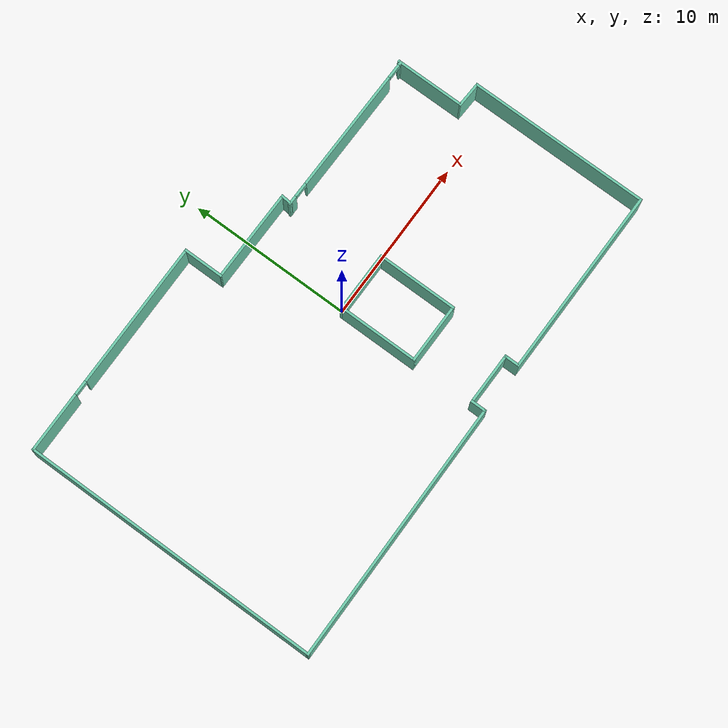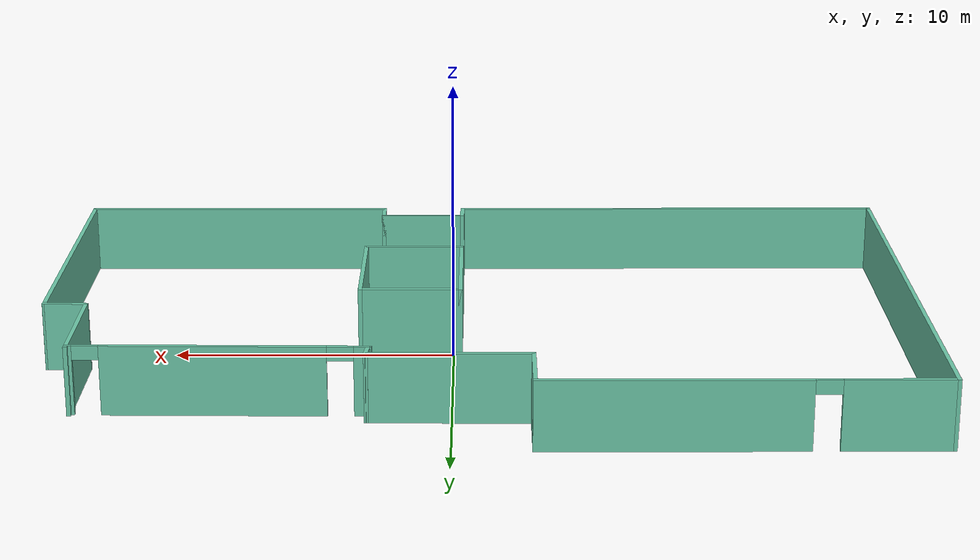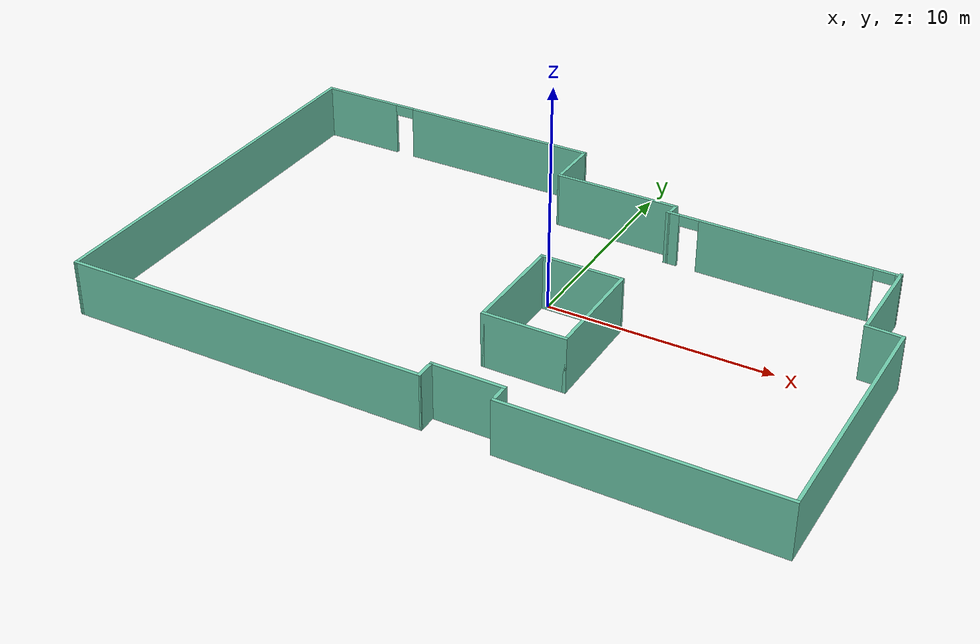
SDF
<sdf version="1.7">
 <world name="lab_arm_world">
  <model name="ground_plane">
   <static>1</static>
   <link name="link_ground_plane">
    <collision name="collision">
     <geometry><plane><normal>0 0 1</normal><size>10 10</size></plane></geometry>
    </collision>
   </link>
  </model>
  <model name="RAH-lab">
   <link name="Wall_0">
    <pose>-15.4096 -0.034118 0 0 0 -1.5708</pose>
    <visual name="Wall_0_Visual">
     <pose>0 0 1.25 0 -0 0</pose>
     <geometry><box><size>18.5837 0.15 2.5</size></box></geometry>
     <material>
      <diffuse>0.435294 0.796078 0.67451 1</diffuse>
      <specular>0.1 0.1 0.1 1</specular>
      <ambient>0.435294 0.796078 0.67451 1</ambient>
      <shader type="pixel"/>
     </material>
     <meta><layer>0</layer></meta>
    </visual>
    <collision name="Wall_0_Collision">
     <pose>0 0 1.25 0 -0 0</pose>
     <geometry><box><size>18.5837 0.15 2.5</size></box></geometry>
     <surface>
      <friction>
       <ode><mu>1</mu><mu2>1</mu2><fdir1>0 0 0</fdir1><slip1>0</slip1><slip2>0</slip2></ode>
       <torsional>
        <coefficient>1</coefficient>
        <patch_radius>0</patch_radius>
        <surface_radius>0</surface_radius>
        <use_patch_radius>1</use_patch_radius>
        <ode><slip>0</slip></ode>
       </torsional>
      </friction>
      <bounce><restitution_coefficient>0</restitution_coefficient><threshold>1e+06</threshold></bounce>
      <contact>
       <collide_without_contact>0</collide_without_contact>
       <collide_without_contact_bitmask>1</collide_without_contact_bitmask>
       <collide_bitmask>1</collide_bitmask>
       <ode>
        <soft_cfm>0</soft_cfm>
        <soft_erp>0.2</soft_erp>
        <kp>1e+13</kp>
        <kd>1</kd>
        <max_vel>0.01</max_vel>
        <min_depth>0</min_depth>
       </ode>
       <bullet>
        <split_impulse>1</split_impulse>
        <split_impulse_penetration_threshold>-0.01</split_impulse_penetration_threshold>
        <soft_cfm>0</soft_cfm>
        <soft_erp>0.2</soft_erp>
        <kp>1e+13</kp>
        <kd>1</kd>
       </bullet>
      </contact>
     </surface>
    </collision>
   </link>
   <link name="Wall_1">
    <pose>-7.31852 -9.1806 0 0 -0 0.008695</pose>
    <visual name="Wall_1_Visual">
     <pose>0 0 1.25 0 -0 0</pose>
     <geometry><box><size>16.3328 0.15 2.5</size></box></geometry>
     <material>
      <diffuse>0.435294 0.796078 0.67451 1</diffuse>
      <specular>0.1 0.1 0.1 1</specular>
      <ambient>0.435294 0.796078 0.67451 1</ambient>
      <shader type="pixel"/>
     </material>
     <meta><layer>0</layer></meta>
    </visual>
    <collision name="Wall_1_Collision">
     <pose>0 0 1.25 0 -0 0</pose>
     <geometry><box><size>16.3328 0.15 2.5</size></box></geometry>
     <surface>
      <friction>
       <ode><mu>1</mu><mu2>1</mu2><fdir1>0 0 0</fdir1><slip1>0</slip1><slip2>0</slip2></ode>
       <torsional>
        <coefficient>1</coefficient>
        <patch_radius>0</patch_radius>
        <surface_radius>0</surface_radius>
        <use_patch_radius>1</use_patch_radius>
        <ode><slip>0</slip></ode>
       </torsional>
      </friction>
      <bounce><restitution_coefficient>0</restitution_coefficient><threshold>1e+06</threshold></bounce>
      <contact>
       <collide_without_contact>0</collide_without_contact>
       <collide_without_contact_bitmask>1</collide_without_contact_bitmask>
       <collide_bitmask>1</collide_bitmask>
       <ode>
        <soft_cfm>0</soft_cfm>
        <soft_erp>0.2</soft_erp>
        <kp>1e+13</kp>
        <kd>1</kd>
        <max_vel>0.01</max_vel>
        <min_depth>0</min_depth>
       </ode>
       <bullet>
        <split_impulse>1</split_impulse>
        <split_impulse_penetration_threshold>-0.01</split_impulse_penetration_threshold>
        <soft_cfm>0</soft_cfm>
        <soft_erp>0.2</soft_erp>
        <kp>1e+13</kp>
        <kd>1</kd>
       </bullet>
      </contact>
     </surface>
    </collision>
   </link>
   <link name="Wall_10">
    <pose>3.82389 6.55251 0 0 -0 1.47981</pose>
    <visual name="Wall_10_Visual">
     <pose>0 0 1.25 0 -0 0</pose>
     <geometry><box><size>0.732199 0.15 2.5</size></box></geometry>
     <material>
      <diffuse>0.435294 0.796078 0.67451 1</diffuse>
      <specular>0.1 0.1 0.1 1</specular>
      <ambient>0.435294 0.796078 0.67451 1</ambient>
      <shader type="pixel"/>
     </material>
     <meta><layer>0</layer></meta>
    </visual>
    <collision name="Wall_10_Collision">
     <pose>0 0 1.25 0 -0 0</pose>
     <geometry><box><size>0.732199 0.15 2.5</size></box></geometry>
     <surface>
      <friction>
       <ode><mu>1</mu><mu2>1</mu2><fdir1>0 0 0</fdir1><slip1>0</slip1><slip2>0</slip2></ode>
       <torsional>
        <coefficient>1</coefficient>
        <patch_radius>0</patch_radius>
        <surface_radius>0</surface_radius>
        <use_patch_radius>1</use_patch_radius>
        <ode><slip>0</slip></ode>
       </torsional>
      </friction>
      <bounce><restitution_coefficient>0</restitution_coefficient><threshold>1e+06</threshold></bounce>
      <contact>
       <collide_without_contact>0</collide_without_contact>
       <collide_without_contact_bitmask>1</collide_without_contact_bitmask>
       <collide_bitmask>1</collide_bitmask>
       <ode>
        <soft_cfm>0</soft_cfm>
        <soft_erp>0.2</soft_erp>
        <kp>1e+13</kp>
        <kd>1</kd>
        <max_vel>0.01</max_vel>
        <min_depth>0</min_depth>
       </ode>
       <bullet>
        <split_impulse>1</split_impulse>
        <split_impulse_penetration_threshold>-0.01</split_impulse_penetration_threshold>
        <soft_cfm>0</soft_cfm>
        <soft_erp>0.2</soft_erp>
        <kp>1e+13</kp>
        <kd>1</kd>
       </bullet>
      </contact>
     </surface>
    </collision>
   </link>
   <link name="Wall_11">
    <pose>1.02612 6.85661 0 0 -0 3.13647</pose>
    <visual name="Wall_11_Visual">
     <pose>0 0 1.25 0 -0 0</pose>
     <geometry><box><size>5.69272 0.15 2.5</size></box></geometry>
     <material>
      <diffuse>0.435294 0.796078 0.67451 1</diffuse>
      <specular>0.1 0.1 0.1 1</specular>
      <ambient>0.435294 0.796078 0.67451 1</ambient>
      <shader type="pixel"/>
     </material>
     <meta><layer>0</layer></meta>
    </visual>
    <collision name="Wall_11_Collision">
     <pose>0 0 1.25 0 -0 0</pose>
     <geometry><box><size>5.69272 0.15 2.5</size></box></geometry>
     <surface>
      <friction>
       <ode><mu>1</mu><mu2>1</mu2><fdir1>0 0 0</fdir1><slip1>0</slip1><slip2>0</slip2></ode>
       <torsional>
        <coefficient>1</coefficient>
        <patch_radius>0</patch_radius>
        <surface_radius>0</surface_radius>
        <use_patch_radius>1</use_patch_radius>
        <ode><slip>0</slip></ode>
       </torsional>
      </friction>
      <bounce><restitution_coefficient>0</restitution_coefficient><threshold>1e+06</threshold></bounce>
      <contact>
       <collide_without_contact>0</collide_without_contact>
       <collide_without_contact_bitmask>1</collide_without_contact_bitmask>
       <collide_bitmask>1</collide_bitmask>
       <ode>
        <soft_cfm>0</soft_cfm>
        <soft_erp>0.2</soft_erp>
        <kp>1e+13</kp>
        <kd>1</kd>
        <max_vel>0.01</max_vel>
        <min_depth>0</min_depth>
       </ode>
       <bullet>
        <split_impulse>1</split_impulse>
        <split_impulse_penetration_threshold>-0.01</split_impulse_penetration_threshold>
        <soft_cfm>0</soft_cfm>
        <soft_erp>0.2</soft_erp>
        <kp>1e+13</kp>
        <kd>1</kd>
       </bullet>
      </contact>
     </surface>
    </collision>
   </link>
   <link name="Wall_12">
    <pose>-1.7452 8.04581 0 0 -0 1.5708</pose>
    <visual name="Wall_12_Visual">
     <pose>0 0 1.25 0 -0 0</pose>
     <geometry><box><size>2.5 0.15 2.5</size></box></geometry>
     <material>
      <diffuse>0.435294 0.796078 0.67451 1</diffuse>
      <specular>0.1 0.1 0.1 1</specular>
      <ambient>0.435294 0.796078 0.67451 1</ambient>
      <shader type="pixel"/>
     </material>
     <meta><layer>0</layer></meta>
    </visual>
    <collision name="Wall_12_Collision">
     <pose>0 0 1.25 0 -0 0</pose>
     <geometry><box><size>2.5 0.15 2.5</size></box></geometry>
     <surface>
      <friction>
       <ode><mu>1</mu><mu2>1</mu2><fdir1>0 0 0</fdir1><slip1>0</slip1><slip2>0</slip2></ode>
       <torsional>
        <coefficient>1</coefficient>
        <patch_radius>0</patch_radius>
        <surface_radius>0</surface_radius>
        <use_patch_radius>1</use_patch_radius>
        <ode><slip>0</slip></ode>
       </torsional>
      </friction>
      <bounce><restitution_coefficient>0</restitution_coefficient><threshold>1e+06</threshold></bounce>
      <contact>
       <collide_without_contact>0</collide_without_contact>
       <collide_without_contact_bitmask>1</collide_without_contact_bitmask>
       <collide_bitmask>1</collide_bitmask>
       <ode>
        <soft_cfm>0</soft_cfm>
        <soft_erp>0.2</soft_erp>
        <kp>1e+13</kp>
        <kd>1</kd>
        <max_vel>0.01</max_vel>
        <min_depth>0</min_depth>
       </ode>
       <bullet>
        <split_impulse>1</split_impulse>
        <split_impulse_penetration_threshold>-0.01</split_impulse_penetration_threshold>
        <soft_cfm>0</soft_cfm>
        <soft_erp>0.2</soft_erp>
        <kp>1e+13</kp>
        <kd>1</kd>
       </bullet>
      </contact>
     </surface>
    </collision>
   </link>
   <link name="Wall_13">
    <pose>-8.547 9.21697 0 0 0 -3.13656</pose>
    <visual name="Wall_13_Visual_1">
     <pose>5.00383 0 1.25 0 -0 0</pose>
     <geometry><box><size>3.74618 0.15 2.5</size></box></geometry>
     <material>
      <diffuse>0.435294 0.796078 0.67451 1</diffuse>
      <specular>0.1 0.1 0.1 1</specular>
      <ambient>0.435294 0.796078 0.67451 1</ambient>
      <shader type="pixel"/>
     </material>
     <meta><layer>0</layer></meta>
    </visual>
    <visual name="Wall_13_Visual_2">
     <pose>2.68074 0 2.25 0 -0 0</pose>
     <geometry><box><size>0.9 0.15 0.5</size></box></geometry>
     <material>
      <diffuse>0.435294 0.796078 0.67451 1</diffuse>
      <specular>0.1 0.1 0.1 1</specular>
      <ambient>0.435294 0.796078 0.67451 1</ambient>
      <shader type="pixel"/>
     </material>
     <meta><layer>0</layer></meta>
    </visual>
    <visual name="Wall_13_Visual_0">
     <pose>-2.32309 0 1.25 0 -0 0</pose>
     <geometry><box><size>9.10767 0.15 2.5</size></box></geometry>
     <material>
      <diffuse>0.435294 0.796078 0.67451 1</diffuse>
      <specular>0.1 0.1 0.1 1</specular>
      <ambient>0.435294 0.796078 0.67451 1</ambient>
      <shader type="pixel"/>
     </material>
     <meta><layer>0</layer></meta>
    </visual>
    <collision name="Wall_13_Collision_0">
     <pose>-2.32309 0 1.25 0 -0 0</pose>
     <geometry><box><size>9.10767 0.15 2.5</size></box></geometry>
     <surface>
      <friction>
       <ode><mu>1</mu><mu2>1</mu2><fdir1>0 0 0</fdir1><slip1>0</slip1><slip2>0</slip2></ode>
       <torsional>
        <coefficient>1</coefficient>
        <patch_radius>0</patch_radius>
        <surface_radius>0</surface_radius>
        <use_patch_radius>1</use_patch_radius>
        <ode><slip>0</slip></ode>
       </torsional>
      </friction>
      <bounce><restitution_coefficient>0</restitution_coefficient><threshold>1e+06</threshold></bounce>
      <contact>
       <collide_without_contact>0</collide_without_contact>
       <collide_without_contact_bitmask>1</collide_without_contact_bitmask>
       <collide_bitmask>1</collide_bitmask>
       <ode>
        <soft_cfm>0</soft_cfm>
        <soft_erp>0.2</soft_erp>
        <kp>1e+13</kp>
        <kd>1</kd>
        <max_vel>0.01</max_vel>
        <min_depth>0</min_depth>
       </ode>
       <bullet>
        <split_impulse>1</split_impulse>
        <split_impulse_penetration_threshold>-0.01</split_impulse_penetration_threshold>
        <soft_cfm>0</soft_cfm>
        <soft_erp>0.2</soft_erp>
        <kp>1e+13</kp>
        <kd>1</kd>
       </bullet>
      </contact>
     </surface>
    </collision>
    <collision name="Wall_13_Collision_2">
     <pose>2.68074 0 2.25 0 -0 0</pose>
     <geometry><box><size>0.9 0.15 0.5</size></box></geometry>
     <surface>
      <friction>
       <ode><mu>1</mu><mu2>1</mu2><fdir1>0 0 0</fdir1><slip1>0</slip1><slip2>0</slip2></ode>
       <torsional>
        <coefficient>1</coefficient>
        <patch_radius>0</patch_radius>
        <surface_radius>0</surface_radius>
        <use_patch_radius>1</use_patch_radius>
        <ode><slip>0</slip></ode>
       </torsional>
      </friction>
      <bounce><restitution_coefficient>0</restitution_coefficient><threshold>1e+06</threshold></bounce>
      <contact>
       <collide_without_contact>0</collide_without_contact>
       <collide_without_contact_bitmask>1</collide_without_contact_bitmask>
       <collide_bitmask>1</collide_bitmask>
       <ode>
        <soft_cfm>0</soft_cfm>
        <soft_erp>0.2</soft_erp>
        <kp>1e+13</kp>
        <kd>1</kd>
        <max_vel>0.01</max_vel>
        <min_depth>0</min_depth>
       </ode>
       <bullet>
        <split_impulse>1</split_impulse>
        <split_impulse_penetration_threshold>-0.01</split_impulse_penetration_threshold>
        <soft_cfm>0</soft_cfm>
        <soft_erp>0.2</soft_erp>
        <kp>1e+13</kp>
        <kd>1</kd>
       </bullet>
      </contact>
     </surface>
    </collision>
    <collision name="Wall_13_Collision_1">
     <pose>5.00383 0 1.25 0 -0 0</pose>
     <geometry><box><size>3.74618 0.15 2.5</size></box></geometry>
     <surface>
      <friction>
       <ode><mu>1</mu><mu2>1</mu2><fdir1>0 0 0</fdir1><slip1>0</slip1><slip2>0</slip2></ode>
       <torsional>
        <coefficient>1</coefficient>
        <patch_radius>0</patch_radius>
        <surface_radius>0</surface_radius>
        <use_patch_radius>1</use_patch_radius>
        <ode><slip>0</slip></ode>
       </torsional>
      </friction>
      <bounce><restitution_coefficient>0</restitution_coefficient><threshold>1e+06</threshold></bounce>
      <contact>
       <collide_without_contact>0</collide_without_contact>
       <collide_without_contact_bitmask>1</collide_without_contact_bitmask>
       <collide_bitmask>1</collide_bitmask>
       <ode>
        <soft_cfm>0</soft_cfm>
        <soft_erp>0.2</soft_erp>
        <kp>1e+13</kp>
        <kd>1</kd>
        <max_vel>0.01</max_vel>
        <min_depth>0</min_depth>
       </ode>
       <bullet>
        <split_impulse>1</split_impulse>
        <split_impulse_penetration_threshold>-0.01</split_impulse_penetration_threshold>
        <soft_cfm>0</soft_cfm>
        <soft_erp>0.2</soft_erp>
        <kp>1e+13</kp>
        <kd>1</kd>
       </bullet>
      </contact>
     </surface>
    </collision>
   </link>
   <link name="Wall_15">
    <pose>0.761931 -1.9537 0 0 0 -1.5708</pose>
    <visual name="Wall_15_Visual">
     <pose>0 0 1.25 0 -0 0</pose>
     <geometry><box><size>5 0.15 2.5</size></box></geometry>
     <material>
      <diffuse>0.435294 0.796078 0.67451 1</diffuse>
      <specular>0.1 0.1 0.1 1</specular>
      <ambient>0.435294 0.796078 0.67451 1</ambient>
      <shader type="pixel"/>
     </material>
     <meta><layer>0</layer></meta>
    </visual>
    <collision name="Wall_15_Collision">
     <pose>0 0 1.25 0 -0 0</pose>
     <geometry><box><size>5 0.15 2.5</size></box></geometry>
     <surface>
      <friction>
       <ode><mu>1</mu><mu2>1</mu2><fdir1>0 0 0</fdir1><slip1>0</slip1><slip2>0</slip2></ode>
       <torsional>
        <coefficient>1</coefficient>
        <patch_radius>0</patch_radius>
        <surface_radius>0</surface_radius>
        <use_patch_radius>1</use_patch_radius>
        <ode><slip>0</slip></ode>
       </torsional>
      </friction>
      <bounce><restitution_coefficient>0</restitution_coefficient><threshold>1e+06</threshold></bounce>
      <contact>
       <collide_without_contact>0</collide_without_contact>
       <collide_without_contact_bitmask>1</collide_without_contact_bitmask>
       <collide_bitmask>1</collide_bitmask>
       <ode>
        <soft_cfm>0</soft_cfm>
        <soft_erp>0.2</soft_erp>
        <kp>1e+13</kp>
        <kd>1</kd>
        <max_vel>0.01</max_vel>
        <min_depth>0</min_depth>
       </ode>
       <bullet>
        <split_impulse>1</split_impulse>
        <split_impulse_penetration_threshold>-0.01</split_impulse_penetration_threshold>
        <soft_cfm>0</soft_cfm>
        <soft_erp>0.2</soft_erp>
        <kp>1e+13</kp>
        <kd>1</kd>
       </bullet>
      </contact>
     </surface>
    </collision>
   </link>
   <link name="Wall_16">
    <pose>2.56193 -4.3787 0 0 -0 0</pose>
    <visual name="Wall_16_Visual">
     <pose>0 0 1.25 0 -0 0</pose>
     <geometry><box><size>3.75 0.15 2.5</size></box></geometry>
     <material>
      <diffuse>0.435294 0.796078 0.67451 1</diffuse>
      <specular>0.1 0.1 0.1 1</specular>
      <ambient>0.435294 0.796078 0.67451 1</ambient>
      <shader type="pixel"/>
     </material>
     <meta><layer>0</layer></meta>
    </visual>
    <collision name="Wall_16_Collision">
     <pose>0 0 1.25 0 -0 0</pose>
     <geometry><box><size>3.75 0.15 2.5</size></box></geometry>
     <surface>
      <friction>
       <ode><mu>1</mu><mu2>1</mu2><fdir1>0 0 0</fdir1><slip1>0</slip1><slip2>0</slip2></ode>
       <torsional>
        <coefficient>1</coefficient>
        <patch_radius>0</patch_radius>
        <surface_radius>0</surface_radius>
        <use_patch_radius>1</use_patch_radius>
        <ode><slip>0</slip></ode>
       </torsional>
      </friction>
      <bounce><restitution_coefficient>0</restitution_coefficient><threshold>1e+06</threshold></bounce>
      <contact>
       <collide_without_contact>0</collide_without_contact>
       <collide_without_contact_bitmask>1</collide_without_contact_bitmask>
       <collide_bitmask>1</collide_bitmask>
       <ode>
        <soft_cfm>0</soft_cfm>
        <soft_erp>0.2</soft_erp>
        <kp>1e+13</kp>
        <kd>1</kd>
        <max_vel>0.01</max_vel>
        <min_depth>0</min_depth>
       </ode>
       <bullet>
        <split_impulse>1</split_impulse>
        <split_impulse_penetration_threshold>-0.01</split_impulse_penetration_threshold>
        <soft_cfm>0</soft_cfm>
        <soft_erp>0.2</soft_erp>
        <kp>1e+13</kp>
        <kd>1</kd>
       </bullet>
      </contact>
     </surface>
    </collision>
   </link>
   <link name="Wall_17">
    <pose>4.36193 -1.9537 0 0 -0 1.5708</pose>
    <visual name="Wall_17_Visual">
     <pose>0 0 1.25 0 -0 0</pose>
     <geometry><box><size>5 0.15 2.5</size></box></geometry>
     <material>
      <diffuse>0.435294 0.796078 0.67451 1</diffuse>
      <specular>0.1 0.1 0.1 1</specular>
      <ambient>0.435294 0.796078 0.67451 1</ambient>
      <shader type="pixel"/>
     </material>
     <meta><layer>0</layer></meta>
    </visual>
    <collision name="Wall_17_Collision">
     <pose>0 0 1.25 0 -0 0</pose>
     <geometry><box><size>5 0.15 2.5</size></box></geometry>
     <surface>
      <friction>
       <ode><mu>1</mu><mu2>1</mu2><fdir1>0 0 0</fdir1><slip1>0</slip1><slip2>0</slip2></ode>
       <torsional>
        <coefficient>1</coefficient>
        <patch_radius>0</patch_radius>
        <surface_radius>0</surface_radius>
        <use_patch_radius>1</use_patch_radius>
        <ode><slip>0</slip></ode>
       </torsional>
      </friction>
      <bounce><restitution_coefficient>0</restitution_coefficient><threshold>1e+06</threshold></bounce>
      <contact>
       <collide_without_contact>0</collide_without_contact>
       <collide_without_contact_bitmask>1</collide_without_contact_bitmask>
       <collide_bitmask>1</collide_bitmask>
       <ode>
        <soft_cfm>0</soft_cfm>
        <soft_erp>0.2</soft_erp>
        <kp>1e+13</kp>
        <kd>1</kd>
        <max_vel>0.01</max_vel>
        <min_depth>0</min_depth>
       </ode>
       <bullet>
        <split_impulse>1</split_impulse>
        <split_impulse_penetration_threshold>-0.01</split_impulse_penetration_threshold>
        <soft_cfm>0</soft_cfm>
        <soft_erp>0.2</soft_erp>
        <kp>1e+13</kp>
        <kd>1</kd>
       </bullet>
      </contact>
     </surface>
    </collision>
   </link>
   <link name="Wall_18">
    <pose>2.56193 0.471296 0 0 -0 3.14159</pose>
    <visual name="Wall_18_Visual">
     <pose>0 0 1.25 0 -0 0</pose>
     <geometry><box><size>3.75 0.15 2.5</size></box></geometry>
     <material>
      <diffuse>0.435294 0.796078 0.67451 1</diffuse>
      <specular>0.1 0.1 0.1 1</specular>
      <ambient>0.435294 0.796078 0.67451 1</ambient>
      <shader type="pixel"/>
     </material>
     <meta><layer>0</layer></meta>
    </visual>
    <collision name="Wall_18_Collision">
     <pose>0 0 1.25 0 -0 0</pose>
     <geometry><box><size>3.75 0.15 2.5</size></box></geometry>
     <surface>
      <friction>
       <ode><mu>1</mu><mu2>1</mu2><fdir1>0 0 0</fdir1><slip1>0</slip1><slip2>0</slip2></ode>
       <torsional>
        <coefficient>1</coefficient>
        <patch_radius>0</patch_radius>
        <surface_radius>0</surface_radius>
        <use_patch_radius>1</use_patch_radius>
        <ode><slip>0</slip></ode>
       </torsional>
      </friction>
      <bounce><restitution_coefficient>0</restitution_coefficient><threshold>1e+06</threshold></bounce>
      <contact>
       <collide_without_contact>0</collide_without_contact>
       <collide_without_contact_bitmask>1</collide_without_contact_bitmask>
       <collide_bitmask>1</collide_bitmask>
       <ode>
        <soft_cfm>0</soft_cfm>
        <soft_erp>0.2</soft_erp>
        <kp>1e+13</kp>
        <kd>1</kd>
        <max_vel>0.01</max_vel>
        <min_depth>0</min_depth>
       </ode>
       <bullet>
        <split_impulse>1</split_impulse>
        <split_impulse_penetration_threshold>-0.01</split_impulse_penetration_threshold>
        <soft_cfm>0</soft_cfm>
        <soft_erp>0.2</soft_erp>
        <kp>1e+13</kp>
        <kd>1</kd>
       </bullet>
      </contact>
     </surface>
    </collision>
   </link>
   <link name="Wall_2">
    <pose>0.772595 -8.68809 0 0 -0 1.5708</pose>
    <visual name="Wall_2_Visual">
     <pose>0 0 1.25 0 -0 0</pose>
     <geometry><box><size>0.99429 0.15 2.5</size></box></geometry>
     <material>
      <diffuse>0.435294 0.796078 0.67451 1</diffuse>
      <specular>0.1 0.1 0.1 1</specular>
      <ambient>0.435294 0.796078 0.67451 1</ambient>
      <shader type="pixel"/>
     </material>
     <meta><layer>0</layer></meta>
    </visual>
    <collision name="Wall_2_Collision">
     <pose>0 0 1.25 0 -0 0</pose>
     <geometry><box><size>0.99429 0.15 2.5</size></box></geometry>
     <surface>
      <friction>
       <ode><mu>1</mu><mu2>1</mu2><fdir1>0 0 0</fdir1><slip1>0</slip1><slip2>0</slip2></ode>
       <torsional>
        <coefficient>1</coefficient>
        <patch_radius>0</patch_radius>
        <surface_radius>0</surface_radius>
        <use_patch_radius>1</use_patch_radius>
        <ode><slip>0</slip></ode>
       </torsional>
      </friction>
      <bounce><restitution_coefficient>0</restitution_coefficient><threshold>1e+06</threshold></bounce>
      <contact>
       <collide_without_contact>0</collide_without_contact>
       <collide_without_contact_bitmask>1</collide_without_contact_bitmask>
       <collide_bitmask>1</collide_bitmask>
       <ode>
        <soft_cfm>0</soft_cfm>
        <soft_erp>0.2</soft_erp>
        <kp>1e+13</kp>
        <kd>1</kd>
        <max_vel>0.01</max_vel>
        <min_depth>0</min_depth>
       </ode>
       <bullet>
        <split_impulse>1</split_impulse>
        <split_impulse_penetration_threshold>-0.01</split_impulse_penetration_threshold>
        <soft_cfm>0</soft_cfm>
        <soft_erp>0.2</soft_erp>
        <kp>1e+13</kp>
        <kd>1</kd>
       </bullet>
      </contact>
     </surface>
    </collision>
   </link>
   <link name="Wall_3">
    <pose>2.32046 -8.26595 0 0 -0 0</pose>
    <visual name="Wall_3_Visual">
     <pose>0 0 1.25 0 -0 0</pose>
     <geometry><box><size>3.24573 0.15 2.5</size></box></geometry>
     <material>
      <diffuse>0.435294 0.796078 0.67451 1</diffuse>
      <specular>0.1 0.1 0.1 1</specular>
      <ambient>0.435294 0.796078 0.67451 1</ambient>
      <shader type="pixel"/>
     </material>
     <meta><layer>0</layer></meta>
    </visual>
    <collision name="Wall_3_Collision">
     <pose>0 0 1.25 0 -0 0</pose>
     <geometry><box><size>3.24573 0.15 2.5</size></box></geometry>
     <surface>
      <friction>
       <ode><mu>1</mu><mu2>1</mu2><fdir1>0 0 0</fdir1><slip1>0</slip1><slip2>0</slip2></ode>
       <torsional>
        <coefficient>1</coefficient>
        <patch_radius>0</patch_radius>
        <surface_radius>0</surface_radius>
        <use_patch_radius>1</use_patch_radius>
        <ode><slip>0</slip></ode>
       </torsional>
      </friction>
      <bounce><restitution_coefficient>0</restitution_coefficient><threshold>1e+06</threshold></bounce>
      <contact>
       <collide_without_contact>0</collide_without_contact>
       <collide_without_contact_bitmask>1</collide_without_contact_bitmask>
       <collide_bitmask>1</collide_bitmask>
       <ode>
        <soft_cfm>0</soft_cfm>
        <soft_erp>0.2</soft_erp>
        <kp>1e+13</kp>
        <kd>1</kd>
        <max_vel>0.01</max_vel>
        <min_depth>0</min_depth>
       </ode>
       <bullet>
        <split_impulse>1</split_impulse>
        <split_impulse_penetration_threshold>-0.01</split_impulse_penetration_threshold>
        <soft_cfm>0</soft_cfm>
        <soft_erp>0.2</soft_erp>
        <kp>1e+13</kp>
        <kd>1</kd>
       </bullet>
      </contact>
     </surface>
    </collision>
   </link>
   <link name="Wall_4">
    <pose>3.86833 -8.68809 0 0 0 -1.5708</pose>
    <visual name="Wall_4_Visual">
     <pose>0 0 1.25 0 -0 0</pose>
     <geometry><box><size>0.99429 0.15 2.5</size></box></geometry>
     <material>
      <diffuse>0.435294 0.796078 0.67451 1</diffuse>
      <specular>0.1 0.1 0.1 1</specular>
      <ambient>0.435294 0.796078 0.67451 1</ambient>
      <shader type="pixel"/>
     </material>
     <meta><layer>0</layer></meta>
    </visual>
    <collision name="Wall_4_Collision">
     <pose>0 0 1.25 0 -0 0</pose>
     <geometry><box><size>0.99429 0.15 2.5</size></box></geometry>
     <surface>
      <friction>
       <ode><mu>1</mu><mu2>1</mu2><fdir1>0 0 0</fdir1><slip1>0</slip1><slip2>0</slip2></ode>
       <torsional>
        <coefficient>1</coefficient>
        <patch_radius>0</patch_radius>
        <surface_radius>0</surface_radius>
        <use_patch_radius>1</use_patch_radius>
        <ode><slip>0</slip></ode>
       </torsional>
      </friction>
      <bounce><restitution_coefficient>0</restitution_coefficient><threshold>1e+06</threshold></bounce>
      <contact>
       <collide_without_contact>0</collide_without_contact>
       <collide_without_contact_bitmask>1</collide_without_contact_bitmask>
       <collide_bitmask>1</collide_bitmask>
       <ode>
        <soft_cfm>0</soft_cfm>
        <soft_erp>0.2</soft_erp>
        <kp>1e+13</kp>
        <kd>1</kd>
        <max_vel>0.01</max_vel>
        <min_depth>0</min_depth>
       </ode>
       <bullet>
        <split_impulse>1</split_impulse>
        <split_impulse_penetration_threshold>-0.01</split_impulse_penetration_threshold>
        <soft_cfm>0</soft_cfm>
        <soft_erp>0.2</soft_erp>
        <kp>1e+13</kp>
        <kd>1</kd>
       </bullet>
      </contact>
     </surface>
    </collision>
   </link>
   <link name="Wall_5">
    <pose>9.63764 -9.11024 0 0 -0 0</pose>
    <visual name="Wall_5_Visual">
     <pose>0 0 1.25 0 -0 0</pose>
     <geometry><box><size>11.6886 0.15 2.5</size></box></geometry>
     <material>
      <diffuse>0.435294 0.796078 0.67451 1</diffuse>
      <specular>0.1 0.1 0.1 1</specular>
      <ambient>0.435294 0.796078 0.67451 1</ambient>
      <shader type="pixel"/>
     </material>
     <meta><layer>0</layer></meta>
    </visual>
    <collision name="Wall_5_Collision">
     <pose>0 0 1.25 0 -0 0</pose>
     <geometry><box><size>11.6886 0.15 2.5</size></box></geometry>
     <surface>
      <friction>
       <ode><mu>1</mu><mu2>1</mu2><fdir1>0 0 0</fdir1><slip1>0</slip1><slip2>0</slip2></ode>
       <torsional>
        <coefficient>1</coefficient>
        <patch_radius>0</patch_radius>
        <surface_radius>0</surface_radius>
        <use_patch_radius>1</use_patch_radius>
        <ode><slip>0</slip></ode>
       </torsional>
      </friction>
      <bounce><restitution_coefficient>0</restitution_coefficient><threshold>1e+06</threshold></bounce>
      <contact>
       <collide_without_contact>0</collide_without_contact>
       <collide_without_contact_bitmask>1</collide_without_contact_bitmask>
       <collide_bitmask>1</collide_bitmask>
       <ode>
        <soft_cfm>0</soft_cfm>
        <soft_erp>0.2</soft_erp>
        <kp>1e+13</kp>
        <kd>1</kd>
        <max_vel>0.01</max_vel>
        <min_depth>0</min_depth>
       </ode>
       <bullet>
        <split_impulse>1</split_impulse>
        <split_impulse_penetration_threshold>-0.01</split_impulse_penetration_threshold>
        <soft_cfm>0</soft_cfm>
        <soft_erp>0.2</soft_erp>
        <kp>1e+13</kp>
        <kd>1</kd>
       </bullet>
      </contact>
     </surface>
    </collision>
   </link>
   <link name="Wall_6">
    <pose>15.407 -3.56024 0 0 -0 1.5708</pose>
    <visual name="Wall_6_Visual">
     <pose>0 0 1.25 0 -0 0</pose>
     <geometry><box><size>11.25 0.15 2.5</size></box></geometry>
     <material>
      <diffuse>0.435294 0.796078 0.67451 1</diffuse>
      <specular>0.1 0.1 0.1 1</specular>
      <ambient>0.435294 0.796078 0.67451 1</ambient>
      <shader type="pixel"/>
     </material>
     <meta><layer>0</layer></meta>
    </visual>
    <collision name="Wall_6_Collision">
     <pose>0 0 1.25 0 -0 0</pose>
     <geometry><box><size>11.25 0.15 2.5</size></box></geometry>
     <surface>
      <friction>
       <ode><mu>1</mu><mu2>1</mu2><fdir1>0 0 0</fdir1><slip1>0</slip1><slip2>0</slip2></ode>
       <torsional>
        <coefficient>1</coefficient>
        <patch_radius>0</patch_radius>
        <surface_radius>0</surface_radius>
        <use_patch_radius>1</use_patch_radius>
        <ode><slip>0</slip></ode>
       </torsional>
      </friction>
      <bounce><restitution_coefficient>0</restitution_coefficient><threshold>1e+06</threshold></bounce>
      <contact>
       <collide_without_contact>0</collide_without_contact>
       <collide_without_contact_bitmask>1</collide_without_contact_bitmask>
       <collide_bitmask>1</collide_bitmask>
       <ode>
        <soft_cfm>0</soft_cfm>
        <soft_erp>0.2</soft_erp>
        <kp>1e+13</kp>
        <kd>1</kd>
        <max_vel>0.01</max_vel>
        <min_depth>0</min_depth>
       </ode>
       <bullet>
        <split_impulse>1</split_impulse>
        <split_impulse_penetration_threshold>-0.01</split_impulse_penetration_threshold>
        <soft_cfm>0</soft_cfm>
        <soft_erp>0.2</soft_erp>
        <kp>1e+13</kp>
        <kd>1</kd>
       </bullet>
      </contact>
     </surface>
    </collision>
   </link>
   <link name="Wall_7">
    <pose>14.6685 2.02329 0 0 -0 3.09622</pose>
    <visual name="Wall_7_Visual">
     <pose>0 0 1.25 0 -0 0</pose>
     <geometry><box><size>1.6285 0.15 2.5</size></box></geometry>
     <material>
      <diffuse>0.435294 0.796078 0.67451 1</diffuse>
      <specular>0.1 0.1 0.1 1</specular>
      <ambient>0.435294 0.796078 0.67451 1</ambient>
      <shader type="pixel"/>
     </material>
     <meta><layer>0</layer></meta>
    </visual>
    <collision name="Wall_7_Collision">
     <pose>0 0 1.25 0 -0 0</pose>
     <geometry><box><size>1.6285 0.15 2.5</size></box></geometry>
     <surface>
      <friction>
       <ode><mu>1</mu><mu2>1</mu2><fdir1>0 0 0</fdir1><slip1>0</slip1><slip2>0</slip2></ode>
       <torsional>
        <coefficient>1</coefficient>
        <patch_radius>0</patch_radius>
        <surface_radius>0</surface_radius>
        <use_patch_radius>1</use_patch_radius>
        <ode><slip>0</slip></ode>
       </torsional>
      </friction>
      <bounce><restitution_coefficient>0</restitution_coefficient><threshold>1e+06</threshold></bounce>
      <contact>
       <collide_without_contact>0</collide_without_contact>
       <collide_without_contact_bitmask>1</collide_without_contact_bitmask>
       <collide_bitmask>1</collide_bitmask>
       <ode>
        <soft_cfm>0</soft_cfm>
        <soft_erp>0.2</soft_erp>
        <kp>1e+13</kp>
        <kd>1</kd>
        <max_vel>0.01</max_vel>
        <min_depth>0</min_depth>
       </ode>
       <bullet>
        <split_impulse>1</split_impulse>
        <split_impulse_penetration_threshold>-0.01</split_impulse_penetration_threshold>
        <soft_cfm>0</soft_cfm>
        <soft_erp>0.2</soft_erp>
        <kp>1e+13</kp>
        <kd>1</kd>
       </bullet>
      </contact>
     </surface>
    </collision>
   </link>
   <link name="Wall_8">
    <pose>13.93 4.21262 0 0 -0 1.5708</pose>
    <visual name="Wall_8_Visual">
     <pose>0 0 1.25 0 -0 0</pose>
     <geometry><box><size>4.25 0.15 2.5</size></box></geometry>
     <material>
      <diffuse>0.435294 0.796078 0.67451 1</diffuse>
      <specular>0.1 0.1 0.1 1</specular>
      <ambient>0.435294 0.796078 0.67451 1</ambient>
      <shader type="pixel"/>
     </material>
     <meta><layer>0</layer></meta>
    </visual>
    <collision name="Wall_8_Collision">
     <pose>0 0 1.25 0 -0 0</pose>
     <geometry><box><size>4.25 0.15 2.5</size></box></geometry>
     <surface>
      <friction>
       <ode><mu>1</mu><mu2>1</mu2><fdir1>0 0 0</fdir1><slip1>0</slip1><slip2>0</slip2></ode>
       <torsional>
        <coefficient>1</coefficient>
        <patch_radius>0</patch_radius>
        <surface_radius>0</surface_radius>
        <use_patch_radius>1</use_patch_radius>
        <ode><slip>0</slip></ode>
       </torsional>
      </friction>
      <bounce><restitution_coefficient>0</restitution_coefficient><threshold>1e+06</threshold></bounce>
      <contact>
       <collide_without_contact>0</collide_without_contact>
       <collide_without_contact_bitmask>1</collide_without_contact_bitmask>
       <collide_bitmask>1</collide_bitmask>
       <ode>
        <soft_cfm>0</soft_cfm>
        <soft_erp>0.2</soft_erp>
        <kp>1e+13</kp>
        <kd>1</kd>
        <max_vel>0.01</max_vel>
        <min_depth>0</min_depth>
       </ode>
       <bullet>
        <split_impulse>1</split_impulse>
        <split_impulse_penetration_threshold>-0.01</split_impulse_penetration_threshold>
        <soft_cfm>0</soft_cfm>
        <soft_erp>0.2</soft_erp>
        <kp>1e+13</kp>
        <kd>1</kd>
       </bullet>
      </contact>
     </surface>
    </collision>
   </link>
   <link name="Wall_9">
    <pose>8.83726 6.20972 0 0 -0 3.13121</pose>
    <visual name="Wall_9_Visual_1">
     <pose>-0.176365 0 1.25 0 -0 0</pose>
     <geometry><box><size>7.65823 0.15 2.5</size></box></geometry>
     <material>
      <diffuse>0.435294 0.796078 0.67451 1</diffuse>
      <specular>0.1 0.1 0.1 1</specular>
      <ambient>0.435294 0.796078 0.67451 1</ambient>
      <shader type="pixel"/>
     </material>
     <meta><layer>0</layer></meta>
    </visual>
    <visual name="Wall_9_Visual_2">
     <pose>4.86037 0 1.25 0 -0 0</pose>
     <geometry><box><size>0.615245 0.15 2.5</size></box></geometry>
     <material>
      <diffuse>0.435294 0.796078 0.67451 1</diffuse>
      <specular>0.1 0.1 0.1 1</specular>
      <ambient>0.435294 0.796078 0.67451 1</ambient>
      <shader type="pixel"/>
     </material>
     <meta><layer>0</layer></meta>
    </visual>
    <visual name="Wall_9_Visual_3">
     <pose>-4.45548 0 2.25 0 -0 0</pose>
     <geometry><box><size>0.9 0.15 0.5</size></box></geometry>
     <material>
      <diffuse>0.435294 0.796078 0.67451 1</diffuse>
      <specular>0.1 0.1 0.1 1</specular>
      <ambient>0.435294 0.796078 0.67451 1</ambient>
      <shader type="pixel"/>
     </material>
     <meta><layer>0</layer></meta>
    </visual>
    <visual name="Wall_9_Visual_4">
     <pose>4.10275 0 2.25 0 -0 0</pose>
     <geometry><box><size>0.9 0.15 0.5</size></box></geometry>
     <material>
      <diffuse>0.435294 0.796078 0.67451 1</diffuse>
      <specular>0.1 0.1 0.1 1</specular>
      <ambient>0.435294 0.796078 0.67451 1</ambient>
      <shader type="pixel"/>
     </material>
     <meta><layer>0</layer></meta>
    </visual>
    <visual name="Wall_9_Visual_0">
     <pose>-5.03674 0 1.25 0 -0 0</pose>
     <geometry><box><size>0.262515 0.15 2.5</size></box></geometry>
     <material>
      <diffuse>0.435294 0.796078 0.67451 1</diffuse>
      <specular>0.1 0.1 0.1 1</specular>
      <ambient>0.435294 0.796078 0.67451 1</ambient>
      <shader type="pixel"/>
     </material>
     <meta><layer>0</layer></meta>
    </visual>
    <collision name="Wall_9_Collision_0">
     <pose>-5.03674 0 1.25 0 -0 0</pose>
     <geometry><box><size>0.262515 0.15 2.5</size></box></geometry>
     <surface>
      <friction>
       <ode><mu>1</mu><mu2>1</mu2><fdir1>0 0 0</fdir1><slip1>0</slip1><slip2>0</slip2></ode>
       <torsional>
        <coefficient>1</coefficient>
        <patch_radius>0</patch_radius>
        <surface_radius>0</surface_radius>
        <use_patch_radius>1</use_patch_radius>
        <ode><slip>0</slip></ode>
       </torsional>
      </friction>
      <bounce><restitution_coefficient>0</restitution_coefficient><threshold>1e+06</threshold></bounce>
      <contact>
       <collide_without_contact>0</collide_without_contact>
       <collide_without_contact_bitmask>1</collide_without_contact_bitmask>
       <collide_bitmask>1</collide_bitmask>
       <ode>
        <soft_cfm>0</soft_cfm>
        <soft_erp>0.2</soft_erp>
        <kp>1e+13</kp>
        <kd>1</kd>
        <max_vel>0.01</max_vel>
        <min_depth>0</min_depth>
       </ode>
       <bullet>
        <split_impulse>1</split_impulse>
        <split_impulse_penetration_threshold>-0.01</split_impulse_penetration_threshold>
        <soft_cfm>0</soft_cfm>
        <soft_erp>0.2</soft_erp>
        <kp>1e+13</kp>
        <kd>1</kd>
       </bullet>
      </contact>
     </surface>
    </collision>
    <collision name="Wall_9_Collision_1">
     <pose>-0.176365 0 1.25 0 -0 0</pose>
     <geometry><box><size>7.65823 0.15 2.5</size></box></geometry>
     <surface>
      <friction>
       <ode><mu>1</mu><mu2>1</mu2><fdir1>0 0 0</fdir1><slip1>0</slip1><slip2>0</slip2></ode>
       <torsional>
        <coefficient>1</coefficient>
        <patch_radius>0</patch_radius>
        <surface_radius>0</surface_radius>
        <use_patch_radius>1</use_patch_radius>
        <ode><slip>0</slip></ode>
       </torsional>
      </friction>
      <bounce><restitution_coefficient>0</restitution_coefficient><threshold>1e+06</threshold></bounce>
      <contact>
       <collide_without_contact>0</collide_without_contact>
       <collide_without_contact_bitmask>1</collide_without_contact_bitmask>
       <collide_bitmask>1</collide_bitmask>
       <ode>
        <soft_cfm>0</soft_cfm>
        <soft_erp>0.2</soft_erp>
        <kp>1e+13</kp>
        <kd>1</kd>
        <max_vel>0.01</max_vel>
        <min_depth>0</min_depth>
       </ode>
       <bullet>
        <split_impulse>1</split_impulse>
        <split_impulse_penetration_threshold>-0.01</split_impulse_penetration_threshold>
        <soft_cfm>0</soft_cfm>
        <soft_erp>0.2</soft_erp>
        <kp>1e+13</kp>
        <kd>1</kd>
       </bullet>
      </contact>
     </surface>
    </collision>
    <collision name="Wall_9_Collision_2">
     <pose>4.86037 0 1.25 0 -0 0</pose>
     <geometry><box><size>0.615245 0.15 2.5</size></box></geometry>
     <surface>
      <friction>
       <ode><mu>1</mu><mu2>1</mu2><fdir1>0 0 0</fdir1><slip1>0</slip1><slip2>0</slip2></ode>
       <torsional>
        <coefficient>1</coefficient>
        <patch_radius>0</patch_radius>
        <surface_radius>0</surface_radius>
        <use_patch_radius>1</use_patch_radius>
        <ode><slip>0</slip></ode>
       </torsional>
      </friction>
      <bounce><restitution_coefficient>0</restitution_coefficient><threshold>1e+06</threshold></bounce>
      <contact>
       <collide_without_contact>0</collide_without_contact>
       <collide_without_contact_bitmask>1</collide_without_contact_bitmask>
       <collide_bitmask>1</collide_bitmask>
       <ode>
        <soft_cfm>0</soft_cfm>
        <soft_erp>0.2</soft_erp>
        <kp>1e+13</kp>
        <kd>1</kd>
        <max_vel>0.01</max_vel>
        <min_depth>0</min_depth>
       </ode>
       <bullet>
        <split_impulse>1</split_impulse>
        <split_impulse_penetration_threshold>-0.01</split_impulse_penetration_threshold>
        <soft_cfm>0</soft_cfm>
        <soft_erp>0.2</soft_erp>
        <kp>1e+13</kp>
        <kd>1</kd>
       </bullet>
      </contact>
     </surface>
    </collision>
    <collision name="Wall_9_Collision_3">
     <pose>-4.45548 0 2.25 0 -0 0</pose>
     <geometry><box><size>0.9 0.15 0.5</size></box></geometry>
     <surface>
      <friction>
       <ode><mu>1</mu><mu2>1</mu2><fdir1>0 0 0</fdir1><slip1>0</slip1><slip2>0</slip2></ode>
       <torsional>
        <coefficient>1</coefficient>
        <patch_radius>0</patch_radius>
        <surface_radius>0</surface_radius>
        <use_patch_radius>1</use_patch_radius>
        <ode><slip>0</slip></ode>
       </torsional>
      </friction>
      <bounce><restitution_coefficient>0</restitution_coefficient><threshold>1e+06</threshold></bounce>
      <contact>
       <collide_without_contact>0</collide_without_contact>
       <collide_without_contact_bitmask>1</collide_without_contact_bitmask>
       <collide_bitmask>1</collide_bitmask>
       <ode>
        <soft_cfm>0</soft_cfm>
        <soft_erp>0.2</soft_erp>
        <kp>1e+13</kp>
        <kd>1</kd>
        <max_vel>0.01</max_vel>
        <min_depth>0</min_depth>
       </ode>
       <bullet>
        <split_impulse>1</split_impulse>
        <split_impulse_penetration_threshold>-0.01</split_impulse_penetration_threshold>
        <soft_cfm>0</soft_cfm>
        <soft_erp>0.2</soft_erp>
        <kp>1e+13</kp>
        <kd>1</kd>
       </bullet>
      </contact>
     </surface>
    </collision>
    <collision name="Wall_9_Collision_4">
     <pose>4.10275 0 2.25 0 -0 0</pose>
     <geometry><box><size>0.9 0.15 0.5</size></box></geometry>
     <surface>
      <friction>
       <ode><mu>1</mu><mu2>1</mu2><fdir1>0 0 0</fdir1><slip1>0</slip1><slip2>0</slip2></ode>
       <torsional>
        <coefficient>1</coefficient>
        <patch_radius>0</patch_radius>
        <surface_radius>0</surface_radius>
        <use_patch_radius>1</use_patch_radius>
        <ode><slip>0</slip></ode>
       </torsional>
      </friction>
      <bounce><restitution_coefficient>0</restitution_coefficient><threshold>1e+06</threshold></bounce>
      <contact>
       <collide_without_contact>0</collide_without_contact>
       <collide_without_contact_bitmask>1</collide_without_contact_bitmask>
       <collide_bitmask>1</collide_bitmask>
       <ode>
        <soft_cfm>0</soft_cfm>
        <soft_erp>0.2</soft_erp>
        <kp>1e+13</kp>
        <kd>1</kd>
        <max_vel>0.01</max_vel>
        <min_depth>0</min_depth>
       </ode>
       <bullet>
        <split_impulse>1</split_impulse>
        <split_impulse_penetration_threshold>-0.01</split_impulse_penetration_threshold>
        <soft_cfm>0</soft_cfm>
        <soft_erp>0.2</soft_erp>
        <kp>1e+13</kp>
        <kd>1</kd>
       </bullet>
      </contact>
     </surface>
    </collision>
   </link>
   <static>1</static>
   <pose>-0.994832 -0.655976 0 0 -0 0</pose>
  </model>
 </world>
</sdf>
